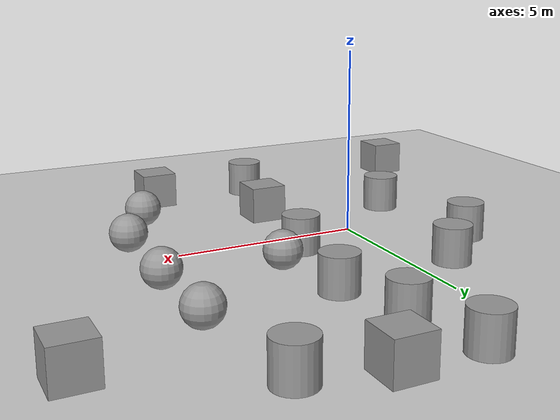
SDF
<sdf version="1.7">
 <world name="default">
  <light name="sun" type="directional">
   <pose>0 0 10 0 -0 0</pose>
   <diffuse>0.8 0.8 0.8 1</diffuse>
   <specular>0.2 0.2 0.2 1</specular>
   <attenuation>
    <range>1000</range>
    <constant>0.9</constant>
    <linear>0.01</linear>
    <quadratic>0.001</quadratic>
   </attenuation>
   <direction>-0.5 0.1 -0.9</direction>
   <spot><inner_angle>0</inner_angle><outer_angle>0</outer_angle><falloff>0</falloff></spot>
  </light>
  <model name="ground_plane">
   <static>1</static>
   <link name="link">
    <collision name="collision">
     <geometry><plane><normal>0 0 1</normal><size>100 100</size></plane></geometry>
     <surface>
      <contact><collide_bitmask>65535</collide_bitmask></contact>
      <friction><ode><mu>100</mu><mu2>50</mu2></ode></friction>
     </surface>
    </collision>
    <visual name="visual">
     <cast_shadows>0</cast_shadows>
     <geometry><plane><normal>0 0 1</normal><size>100 100</size></plane></geometry>
     <material>
      <script><uri>file://media/materials/scripts/gazebo.material</uri><name>Gazebo/Grey</name></script>
     </material>
    </visual>
   </link>
  </model>
  <gravity>0 0 -9.8</gravity>
  <magnetic_field>6e-06 2.3e-05 -4.2e-05</magnetic_field>
  <atmosphere type="adiabatic"/>
  <physics type="ode">
   <max_step_size>0.001</max_step_size>
   <real_time_factor>1</real_time_factor>
   <real_time_update_rate>1000</real_time_update_rate>
  </physics>
  <scene><ambient>0.4 0.4 0.4 1</ambient><background>0.7 0.7 0.7 1</background><shadows>1</shadows></scene>
  <audio><device>default</device></audio>
  <spherical_coordinates>
   <surface_model>EARTH_WGS84</surface_model>
   <latitude_deg>0</latitude_deg>
   <longitude_deg>0</longitude_deg>
   <elevation>0</elevation>
   <heading_deg>0</heading_deg>
  </spherical_coordinates>
  <model name="unit_box">
   <pose>1.63305 -2.22411 0.499995 0 1e-05 0</pose>
   <link name="link">
    <inertial>
     <mass>1</mass>
     <inertia>
      <ixx>0.166667</ixx>
      <ixy>0</ixy>
      <ixz>0</ixz>
      <iyy>0.166667</iyy>
      <iyz>0</iyz>
      <izz>0.166667</izz>
     </inertia>
    </inertial>
    <collision name="collision"><geometry><box><size>1 1 1</size></box></geometry></collision>
    <visual name="visual">
     <geometry><box><size>1 1 1</size></box></geometry>
     <material>
      <script><name>Gazebo/Grey</name><uri>file://media/materials/scripts/gazebo.material</uri></script>
     </material>
    </visual>
   </link>
  </model>
  <model name="unit_sphere_0">
   <pose>3 2 0.5 0 -0 0</pose>
   <link name="link">
    <inertial>
     <mass>1</mass>
     <inertia><ixx>0.1</ixx><ixy>0</ixy><ixz>0</ixz><iyy>0.1</iyy><iyz>0</iyz><izz>0.1</izz></inertia>
    </inertial>
    <collision name="collision"><geometry><sphere><radius>0.5</radius></sphere></geometry></collision>
    <visual name="visual">
     <geometry><sphere><radius>0.5</radius></sphere></geometry>
     <material>
      <script><name>Gazebo/Grey</name><uri>file://media/materials/scripts/gazebo.material</uri></script>
     </material>
    </visual>
   </link>
  </model>
  <model name="unit_cylinder">
   <pose>2 0.999999 0.499998 3e-06 -2e-06 0</pose>
   <link name="link">
    <inertial>
     <mass>1</mass>
     <inertia><ixx>0.145833</ixx><ixy>0</ixy><ixz>0</ixz><iyy>0.145833</iyy><iyz>0</iyz><izz>0.125</izz></inertia>
    </inertial>
    <collision name="collision">
     <geometry><cylinder><radius>0.5</radius><length>1</length></cylinder></geometry>
    </collision>
    <visual name="visual">
     <geometry><cylinder><radius>0.5</radius><length>1</length></cylinder></geometry>
     <material>
      <script><name>Gazebo/Grey</name><uri>file://media/materials/scripts/gazebo.material</uri></script>
     </material>
    </visual>
   </link>
  </model>
  <model name="unit_sphere_0_clone">
   <pose>5 -3 0.5 0 -0 0</pose>
   <link name="link">
    <inertial>
     <mass>1</mass>
     <inertia><ixx>0.1</ixx><ixy>0</ixy><ixz>0</ixz><iyy>0.1</iyy><iyz>0</iyz><izz>0.1</izz></inertia>
    </inertial>
    <collision name="collision"><geometry><sphere><radius>0.5</radius></sphere></geometry></collision>
    <visual name="visual">
     <geometry><sphere><radius>0.5</radius></sphere></geometry>
     <material>
      <script><name>Gazebo/Grey</name><uri>file://media/materials/scripts/gazebo.material</uri></script>
     </material>
    </visual>
   </link>
  </model>
  <model name="unit_sphere_0_clone_0">
   <pose>6 -1 0.5 0 -0 0</pose>
   <link name="link">
    <inertial>
     <mass>1</mass>
     <inertia><ixx>0.1</ixx><ixy>0</ixy><ixz>0</ixz><iyy>0.1</iyy><iyz>0</iyz><izz>0.1</izz></inertia>
    </inertial>
    <collision name="collision"><geometry><sphere><radius>0.5</radius></sphere></geometry></collision>
    <visual name="visual">
     <geometry><sphere><radius>0.5</radius></sphere></geometry>
     <material>
      <script><name>Gazebo/Grey</name><uri>file://media/materials/scripts/gazebo.material</uri></script>
     </material>
    </visual>
   </link>
  </model>
  <model name="unit_sphere_0_clone_1">
   <pose>6.05942 1.89282 0.5 0 -0 0</pose>
   <link name="link">
    <inertial>
     <mass>1</mass>
     <inertia><ixx>0.1</ixx><ixy>0</ixy><ixz>0</ixz><iyy>0.1</iyy><iyz>0</iyz><izz>0.1</izz></inertia>
    </inertial>
    <collision name="collision"><geometry><sphere><radius>0.5</radius></sphere></geometry></collision>
    <visual name="visual">
     <geometry><sphere><radius>0.5</radius></sphere></geometry>
     <material>
      <script><name>Gazebo/Grey</name><uri>file://media/materials/scripts/gazebo.material</uri></script>
     </material>
    </visual>
   </link>
  </model>
  <model name="unit_sphere_0_clone_2">
   <pose>6 4.42368 0.5 0 -0 0</pose>
   <link name="link">
    <inertial>
     <mass>1</mass>
     <inertia><ixx>0.1</ixx><ixy>0</ixy><ixz>0</ixz><iyy>0.1</iyy><iyz>0</iyz><izz>0.1</izz></inertia>
    </inertial>
    <collision name="collision"><geometry><sphere><radius>0.5</radius></sphere></geometry></collision>
    <visual name="visual">
     <geometry><sphere><radius>0.5</radius></sphere></geometry>
     <material>
      <script><name>Gazebo/Grey</name><uri>file://media/materials/scripts/gazebo.material</uri></script>
     </material>
    </visual>
   </link>
  </model>
  <model name="unit_cylinder_clone">
   <pose>2.53853 4 0.499992 -3e-06 3e-06 0</pose>
   <link name="link">
    <inertial>
     <mass>1</mass>
     <inertia><ixx>0.145833</ixx><ixy>0</ixy><ixz>0</ixz><iyy>0.145833</iyy><iyz>0</iyz><izz>0.125</izz></inertia>
    </inertial>
    <collision name="collision">
     <geometry><cylinder><radius>0.5</radius><length>1</length></cylinder></geometry>
    </collision>
    <visual name="visual">
     <geometry><cylinder><radius>0.5</radius><length>1</length></cylinder></geometry>
     <material>
      <script><name>Gazebo/Grey</name><uri>file://media/materials/scripts/gazebo.material</uri></script>
     </material>
    </visual>
   </link>
  </model>
  <model name="unit_cylinder_clone_0">
   <pose>2 6 0.499992 -3e-06 3e-06 0</pose>
   <link name="link">
    <inertial>
     <mass>1</mass>
     <inertia><ixx>0.145833</ixx><ixy>0</ixy><ixz>0</ixz><iyy>0.145833</iyy><iyz>0</iyz><izz>0.125</izz></inertia>
    </inertial>
    <collision name="collision">
     <geometry><cylinder><radius>0.5</radius><length>1</length></cylinder></geometry>
    </collision>
    <visual name="visual">
     <geometry><cylinder><radius>0.5</radius><length>1</length></cylinder></geometry>
     <material>
      <script><name>Gazebo/Grey</name><uri>file://media/materials/scripts/gazebo.material</uri></script>
     </material>
    </visual>
   </link>
  </model>
  <model name="unit_cylinder_clone_1">
   <pose>5.41441 7.47789 0.499998 3e-06 -3e-06 0</pose>
   <link name="link">
    <inertial>
     <mass>1</mass>
     <inertia><ixx>0.145833</ixx><ixy>0</ixy><ixz>0</ixz><iyy>0.145833</iyy><iyz>0</iyz><izz>0.125</izz></inertia>
    </inertial>
    <collision name="collision">
     <geometry><cylinder><radius>0.5</radius><length>1</length></cylinder></geometry>
    </collision>
    <visual name="visual">
     <geometry><cylinder><radius>0.5</radius><length>1</length></cylinder></geometry>
     <material>
      <script><name>Gazebo/Grey</name><uri>file://media/materials/scripts/gazebo.material</uri></script>
     </material>
    </visual>
   </link>
  </model>
  <model name="unit_cylinder_clone_2">
   <pose>1.44948 8 0.499992 -3e-06 4e-06 0</pose>
   <link name="link">
    <inertial>
     <mass>1</mass>
     <inertia><ixx>0.145833</ixx><ixy>0</ixy><ixz>0</ixz><iyy>0.145833</iyy><iyz>0</iyz><izz>0.125</izz></inertia>
    </inertial>
    <collision name="collision">
     <geometry><cylinder><radius>0.5</radius><length>1</length></cylinder></geometry>
    </collision>
    <visual name="visual">
     <geometry><cylinder><radius>0.5</radius><length>1</length></cylinder></geometry>
     <material>
      <script><name>Gazebo/Grey</name><uri>file://media/materials/scripts/gazebo.material</uri></script>
     </material>
    </visual>
   </link>
  </model>
  <model name="unit_cylinder_clone_3">
   <pose>-2 -1.52699 0.499998 3e-06 -2e-06 0</pose>
   <link name="link">
    <inertial>
     <mass>1</mass>
     <inertia><ixx>0.145833</ixx><ixy>0</ixy><ixz>0</ixz><iyy>0.145833</iyy><iyz>0</iyz><izz>0.125</izz></inertia>
    </inertial>
    <collision name="collision">
     <geometry><cylinder><radius>0.5</radius><length>1</length></cylinder></geometry>
    </collision>
    <visual name="visual">
     <geometry><cylinder><radius>0.5</radius><length>1</length></cylinder></geometry>
     <material>
      <script><name>Gazebo/Grey</name><uri>file://media/materials/scripts/gazebo.material</uri></script>
     </material>
    </visual>
   </link>
  </model>
  <model name="unit_cylinder_clone_4">
   <pose>-2.51042 2 0.499998 3e-06 -2e-06 0</pose>
   <link name="link">
    <inertial>
     <mass>1</mass>
     <inertia><ixx>0.145833</ixx><ixy>0</ixy><ixz>0</ixz><iyy>0.145833</iyy><iyz>0</iyz><izz>0.125</izz></inertia>
    </inertial>
    <collision name="collision">
     <geometry><cylinder><radius>0.5</radius><length>1</length></cylinder></geometry>
    </collision>
    <visual name="visual">
     <geometry><cylinder><radius>0.5</radius><length>1</length></cylinder></geometry>
     <material>
      <script><name>Gazebo/Grey</name><uri>file://media/materials/scripts/gazebo.material</uri></script>
     </material>
    </visual>
   </link>
  </model>
  <model name="unit_cylinder_clone_5">
   <pose>-0.999997 3.47215 0.499992 -3e-06 2e-06 0</pose>
   <link name="link">
    <inertial>
     <mass>1</mass>
     <inertia><ixx>0.145833</ixx><ixy>0</ixy><ixz>0</ixz><iyy>0.145833</iyy><iyz>0</iyz><izz>0.125</izz></inertia>
    </inertial>
    <collision name="collision">
     <geometry><cylinder><radius>0.5</radius><length>1</length></cylinder></geometry>
    </collision>
    <visual name="visual">
     <geometry><cylinder><radius>0.5</radius><length>1</length></cylinder></geometry>
     <material>
      <script><name>Gazebo/Grey</name><uri>file://media/materials/scripts/gazebo.material</uri></script>
     </material>
    </visual>
   </link>
  </model>
  <model name="unit_cylinder_clone_6">
   <pose>1 -5 0.499998 3e-06 -2e-06 0</pose>
   <link name="link">
    <inertial>
     <mass>1</mass>
     <inertia><ixx>0.145833</ixx><ixy>0</ixy><ixz>0</ixz><iyy>0.145833</iyy><iyz>0</iyz><izz>0.125</izz></inertia>
    </inertial>
    <collision name="collision">
     <geometry><cylinder><radius>0.5</radius><length>1</length></cylinder></geometry>
    </collision>
    <visual name="visual">
     <geometry><cylinder><radius>0.5</radius><length>1</length></cylinder></geometry>
     <material>
      <script><name>Gazebo/Grey</name><uri>file://media/materials/scripts/gazebo.material</uri></script>
     </material>
    </visual>
   </link>
  </model>
  <model name="unit_box_clone">
   <pose>4 -5 0.499995 -1e-05 -0 -0</pose>
   <link name="link">
    <inertial>
     <mass>1</mass>
     <inertia>
      <ixx>0.166667</ixx>
      <ixy>0</ixy>
      <ixz>0</ixz>
      <iyy>0.166667</iyy>
      <iyz>0</iyz>
      <izz>0.166667</izz>
     </inertia>
    </inertial>
    <collision name="collision"><geometry><box><size>1 1 1</size></box></geometry></collision>
    <visual name="visual">
     <geometry><box><size>1 1 1</size></box></geometry>
     <material>
      <script><name>Gazebo/Grey</name><uri>file://media/materials/scripts/gazebo.material</uri></script>
     </material>
    </visual>
   </link>
  </model>
  <model name="unit_box_clone_0">
   <pose>-4.51832 -5.58026 0.499995 0 1e-05 0</pose>
   <link name="link">
    <inertial>
     <mass>1</mass>
     <inertia>
      <ixx>0.166667</ixx>
      <ixy>0</ixy>
      <ixz>0</ixz>
      <iyy>0.166667</iyy>
      <iyz>0</iyz>
      <izz>0.166667</izz>
     </inertia>
    </inertial>
    <collision name="collision"><geometry><box><size>1 1 1</size></box></geometry></collision>
    <visual name="visual">
     <geometry><box><size>1 1 1</size></box></geometry>
     <material>
      <script><name>Gazebo/Grey</name><uri>file://media/materials/scripts/gazebo.material</uri></script>
     </material>
    </visual>
   </link>
  </model>
  <model name="unit_box_clone_1">
   <pose>3.47893 8 0.499995 -1e-05 -0 0</pose>
   <link name="link">
    <inertial>
     <mass>1</mass>
     <inertia>
      <ixx>0.166667</ixx>
      <ixy>0</ixy>
      <ixz>0</ixz>
      <iyy>0.166667</iyy>
      <iyz>0</iyz>
      <izz>0.166667</izz>
     </inertia>
    </inertial>
    <collision name="collision"><geometry><box><size>1 1 1</size></box></geometry></collision>
    <visual name="visual">
     <geometry><box><size>1 1 1</size></box></geometry>
     <material>
      <script><name>Gazebo/Grey</name><uri>file://media/materials/scripts/gazebo.material</uri></script>
     </material>
    </visual>
   </link>
  </model>
  <model name="unit_box_clone_2">
   <pose>9 5.57006 0.5 0 -0 0</pose>
   <link name="link">
    <inertial>
     <mass>1</mass>
     <inertia>
      <ixx>0.166667</ixx>
      <ixy>0</ixy>
      <ixz>0</ixz>
      <iyy>0.166667</iyy>
      <iyz>0</iyz>
      <izz>0.166667</izz>
     </inertia>
    </inertial>
    <collision name="collision"><geometry><box><size>1 1 1</size></box></geometry></collision>
    <visual name="visual">
     <geometry><box><size>1 1 1</size></box></geometry>
     <material>
      <script><name>Gazebo/Grey</name><uri>file://media/materials/scripts/gazebo.material</uri></script>
     </material>
    </visual>
   </link>
  </model>
 </world>
</sdf>
